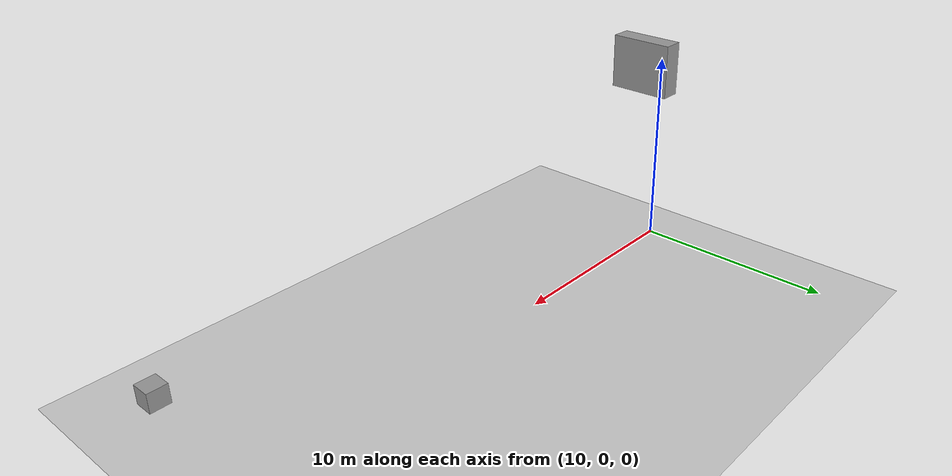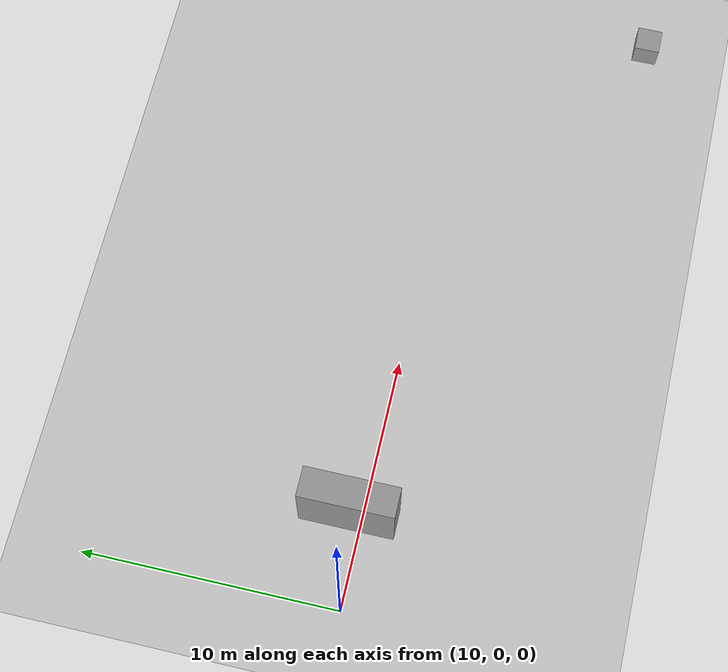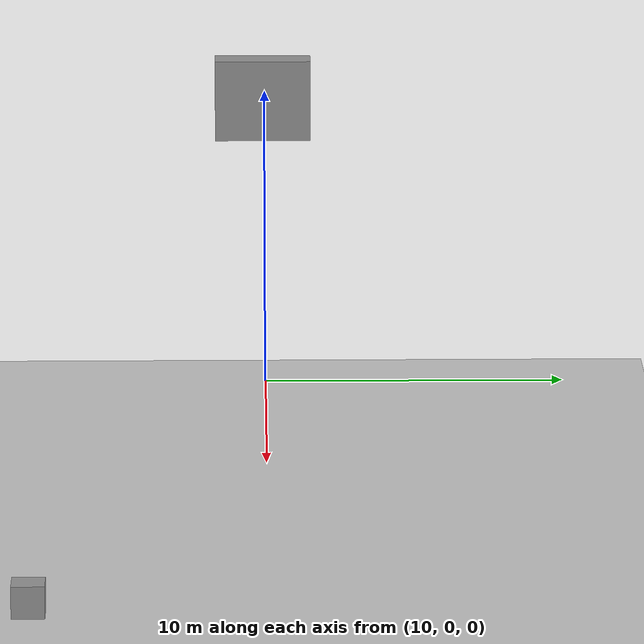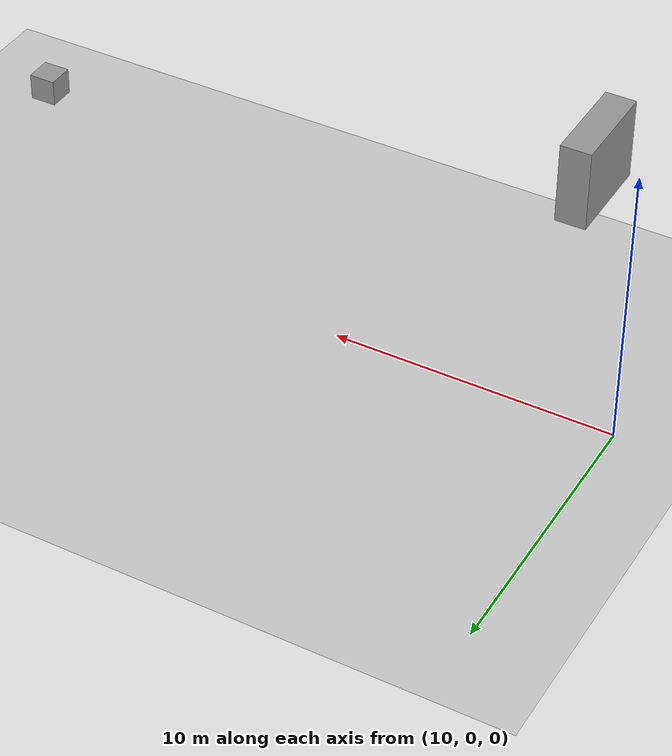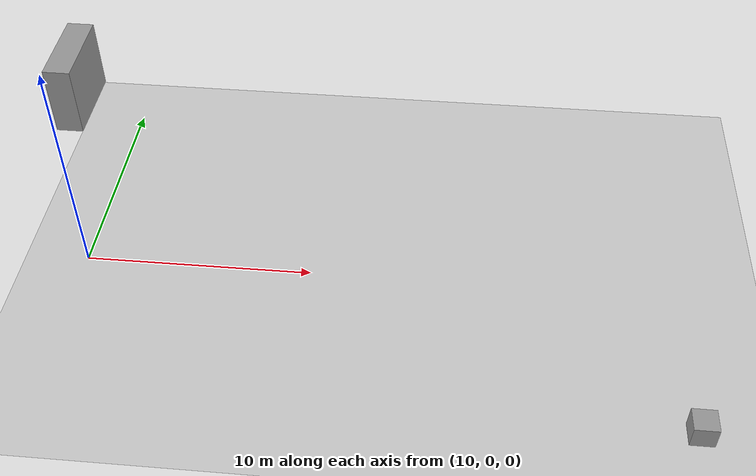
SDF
<sdf version="1.4">
  <world name="default">
   <light name='sun' type='directional'>
      <cast_shadows>1</cast_shadows>
      <pose>0 0 10 0 -0 0</pose>
      <diffuse>0.8 0.8 0.8 1</diffuse>
      <specular>0.2 0.2 0.2 1</specular>
      <attenuation>
        <range>1000</range>
        <constant>0.9</constant>
        <linear>0.01</linear>
        <quadratic>0.001</quadratic>
      </attenuation>
      <direction>-0.5 0.1 -0.9</direction>
    </light>
    <model name='ground_plane'>
      <static>1</static>
      <link name='link'>
        <collision name='collision'>
          <geometry>
            <plane>
              <normal>0 0 1</normal>
              <size>100 100</size>
            </plane>
          </geometry>
          <surface>
            <friction>
              <ode>
                <mu>100</mu>
                <mu2>50</mu2>
              </ode>
            </friction>
            <bounce/>
            <contact>
              <ode/>
            </contact>
          </surface>
          <max_contacts>10</max_contacts>
        </collision>
        <visual name='visual'>
          <cast_shadows>0</cast_shadows>
          <geometry>
            <plane>
              <normal>0 0 1</normal>
              <size>100 100</size>
            </plane>
          </geometry>
          <material>
            <script>
              <uri>file://media/materials/scripts/gazebo.material</uri>
              <name>Gazebo/Grey</name>
            </script>
          </material>
        </visual>
        <velocity_decay>
          <linear>0</linear>
          <angular>0</angular>
        </velocity_decay>
        <self_collide>0</self_collide>
        <kinematic>0</kinematic>
        <gravity>1</gravity>
      </link>
    </model>

    <model name='wall'>
          <link name='link'>
            <inertial>
              <mass>1</mass>
              <inertia>
                <ixx>0.166667</ixx>
                <ixy>0</ixy>
                <ixz>0</ixz>
                <iyy>0.166667</iyy>
                <iyz>0</iyz>
                <izz>0.166667</izz>
              </inertia>
              <pose>0 0 0 0 -0 0</pose>
            </inertial>
            <self_collide>0</self_collide>
            <enable_wind>0</enable_wind>
            <kinematic>0</kinematic>
            <pose>0 0 0 0 -0 0</pose>
            <visual name='visual'>
              <geometry>
                <box>
                  <size>1 3.14331 2.67004</size>
                </box>
              </geometry>
              <material>
                <script>
                  <name>Gazebo/Grey</name>
                  <uri>file://media/materials/scripts/gazebo.material</uri>
                </script>
                <shader type='pixel'/>
              </material>
              <pose>0 0 0 0 -0 0</pose>
              <transparency>0</transparency>
              <cast_shadows>1</cast_shadows>
            </visual>
            <collision name='collision'>
              <laser_retro>0</laser_retro>
              <max_contacts>10</max_contacts>
              <pose>0 0 0 0 -0 0</pose>
              <geometry>
                <box>
                  <size>1 3.14331 2.67004</size>
                </box>
              </geometry>
              <surface>
                <friction>
                  <ode>
                    <mu>1</mu>
                    <mu2>1</mu2>
                    <fdir1>0 0 0</fdir1>
                    <slip1>0</slip1>
                    <slip2>0</slip2>
                  </ode>
                  <torsional>
                    <coefficient>1</coefficient>
                    <patch_radius>0</patch_radius>
                    <surface_radius>0</surface_radius>
                    <use_patch_radius>1</use_patch_radius>
                    <ode>
                      <slip>0</slip>
                    </ode>
                  </torsional>
                </friction>
                <bounce>
                  <restitution_coefficient>0</restitution_coefficient>
                  <threshold>1e+06</threshold>
                </bounce>
                <contact>
                  <collide_without_contact>0</collide_without_contact>
                  <collide_without_contact_bitmask>1</collide_without_contact_bitmask>
                  <collide_bitmask>1</collide_bitmask>
                  <ode>
                    <soft_cfm>0</soft_cfm>
                    <soft_erp>0.2</soft_erp>
                    <kp>1e+13</kp>
                    <kd>1</kd>
                    <max_vel>0.01</max_vel>
                    <min_depth>0</min_depth>
                  </ode>
                  <bullet>
                    <split_impulse>1</split_impulse>
                    <split_impulse_penetration_threshold>-0.01</split_impulse_penetration_threshold>
                    <soft_cfm>0</soft_cfm>
                    <soft_erp>0.2</soft_erp>
                    <kp>1e+13</kp>
                    <kd>1</kd>
                  </bullet>
                </contact>
              </surface>
            </collision>
          </link>

          <static>1</static>
          <allow_auto_disable>1</allow_auto_disable>
          <pose>11.4463 -0.064849 10.07739 0 -0 0</pose>
        </model>

        <model name='unit_box_0'>
          <pose>36.0995 -7.09638 0.5 0 -0 0</pose>
          <link name='link'>
            <inertial>
              <mass>1</mass>
              <inertia>
                <ixx>0.166667</ixx>
                <ixy>0</ixy>
                <ixz>0</ixz>
                <iyy>0.166667</iyy>
                <iyz>0</iyz>
                <izz>0.166667</izz>
              </inertia>
              <pose>0 0 0 0 -0 0</pose>
            </inertial>
            <collision name='collision'>
              <geometry>
                <box>
                  <size>1 1 1.00001</size>
                </box>
              </geometry>
              <max_contacts>10</max_contacts>
              <surface>
                <contact>
                  <ode/>
                </contact>
                <bounce/>
                <friction>
                  <torsional>
                    <ode/>
                  </torsional>
                  <ode/>
                </friction>
              </surface>
            </collision>
            <visual name='visual'>
              <geometry>
                <box>
                  <size>1 1 1.00001</size>
                </box>
              </geometry>
              <material>
                <script>
                  <name>Gazebo/Grey</name>
                  <uri>file://media/materials/scripts/gazebo.material</uri>
                </script>
              </material>
            </visual>
            <self_collide>0</self_collide>
            <enable_wind>0</enable_wind>
            <kinematic>0</kinematic>
          </link>
        </model>

    <spherical_coordinates>
      <surface_model>EARTH_WGS84</surface_model>
      <latitude_deg>47.3667</latitude_deg>
      <longitude_deg>8.5500</longitude_deg>
      <elevation>500.0</elevation>
      <heading_deg>0</heading_deg>
    </spherical_coordinates>
    <physics type='ode'>
      <ode>
        <solver>
          <type>quick</type>
          <iters>1000</iters>
          <sor>1.3</sor>
        </solver>
        <constraints>
          <cfm>0</cfm>
          <erp>0.2</erp>
          <contact_max_correcting_vel>100</contact_max_correcting_vel>
          <contact_surface_layer>0.001</contact_surface_layer>
        </constraints>
      </ode>
        <model name='ground_plane'>
        <pose>0 0 0 0 -0 0</pose>
        <link name='link'>
          <pose>0 0 0 0 -0 0</pose>
          <velocity>0 0 0 0 -0 0</velocity>
          <acceleration>0 0 0 0 -0 0</acceleration>
          <wrench>0 0 0 0 -0 0</wrench>
        </link>
      </model>
           <model name='wall'>
        <pose>0 0 0 0 -0 0</pose>
        <link name='link'>
          <pose>0 0 0 0 -0 0</pose>
          <velocity>0 0 0 0 -0 0</velocity>
          <acceleration>0 0 0 0 -0 0</acceleration>
          <wrench>0 0 0 0 -0 0</wrench>
        </link>
      </model>
	      <model name='unit_box_0'>
        <pose>0 0 0 0 -0 0</pose>
        <link name='link'>
          <pose>0 0 0 0 -0 0</pose>
          <velocity>0 0 0 0 -0 0</velocity>
          <acceleration>0 0 0 0 -0 0</acceleration>
          <wrench>0 0 0 0 -0 0</wrench>
        </link>
      </model>
      <max_step_size>0.01</max_step_size>
      <real_time_factor>1</real_time_factor>
      <real_time_update_rate>100</real_time_update_rate>
      <gravity>0 0 -9.8</gravity>
    </physics>
  </world>
</sdf>
